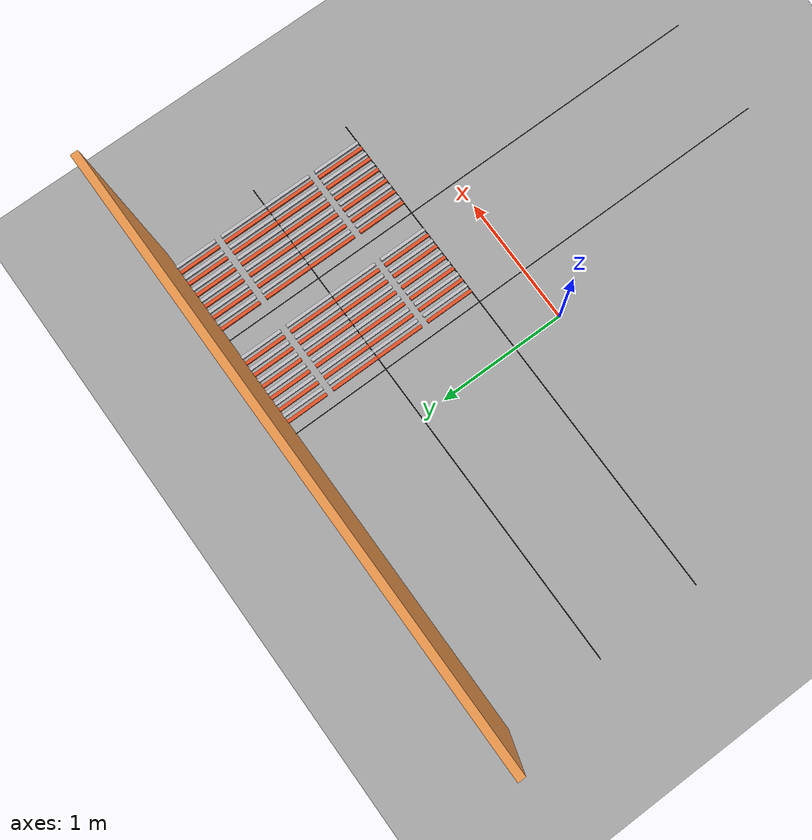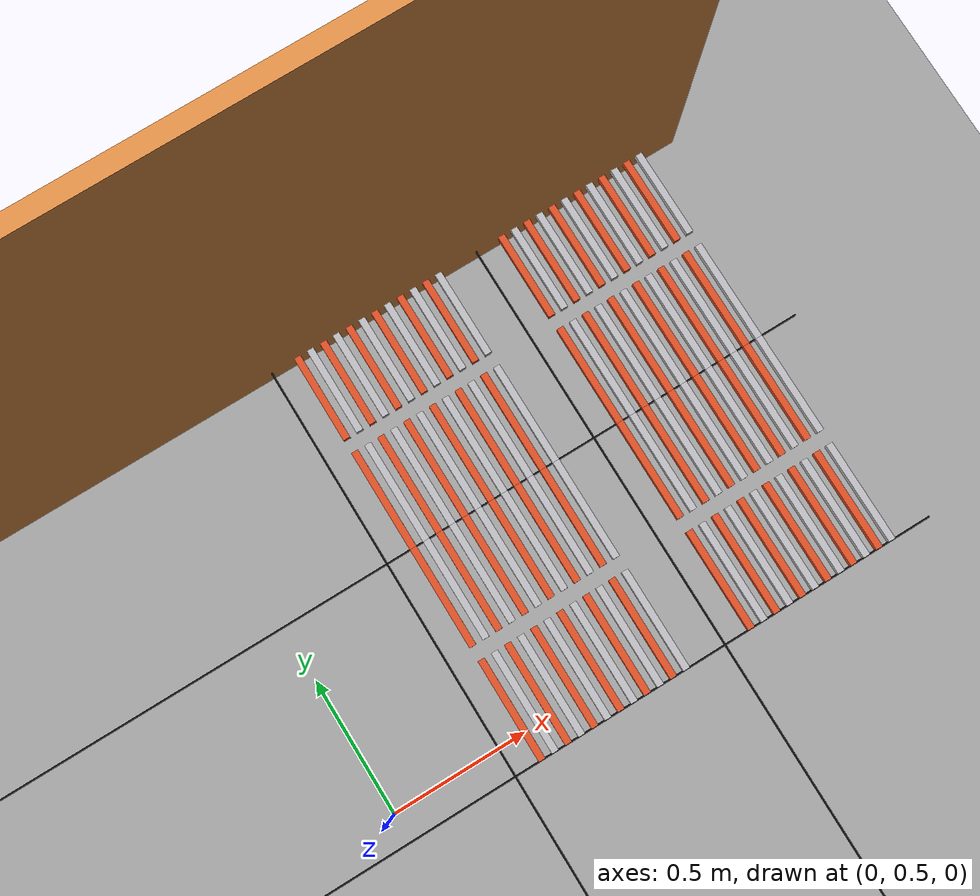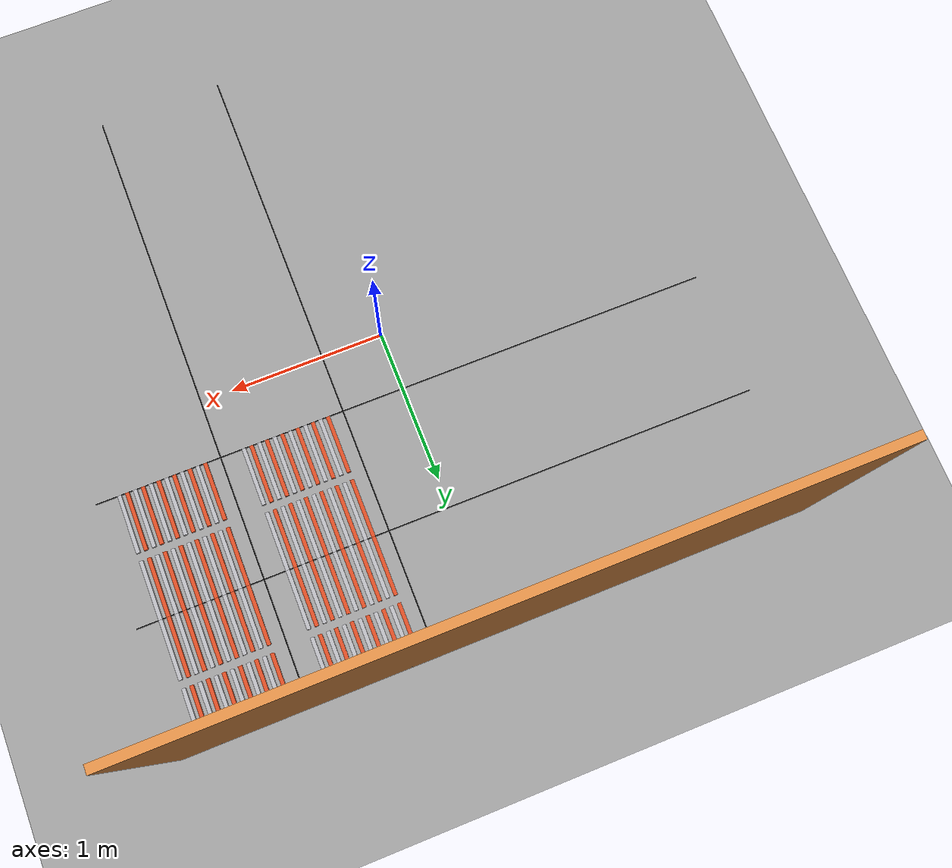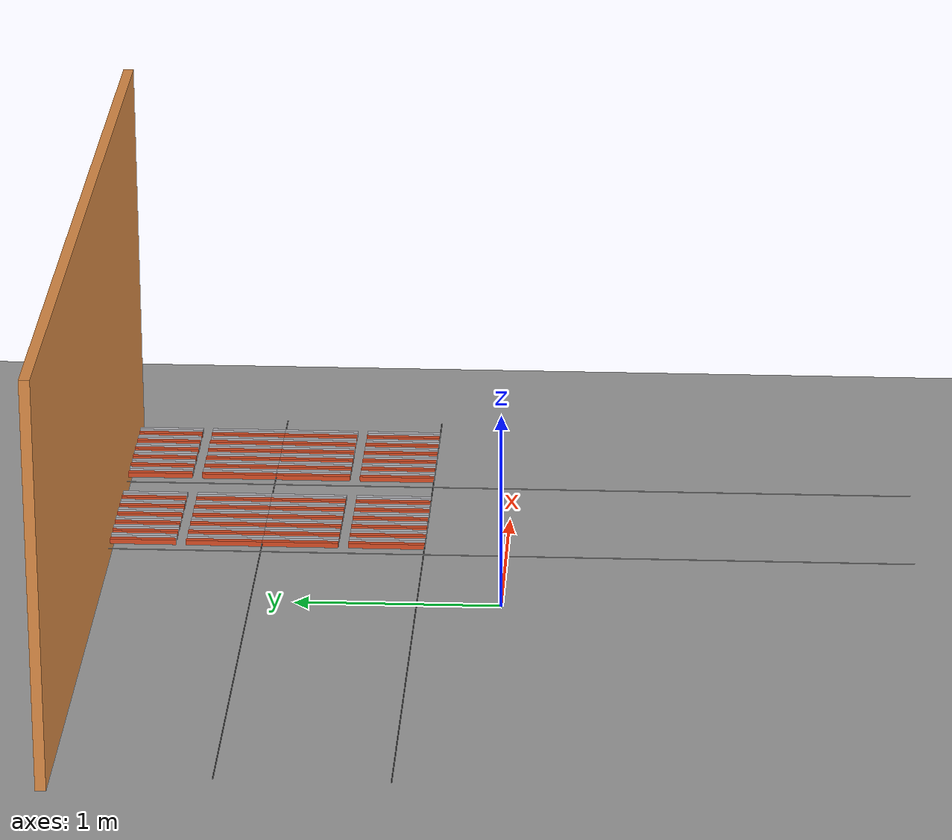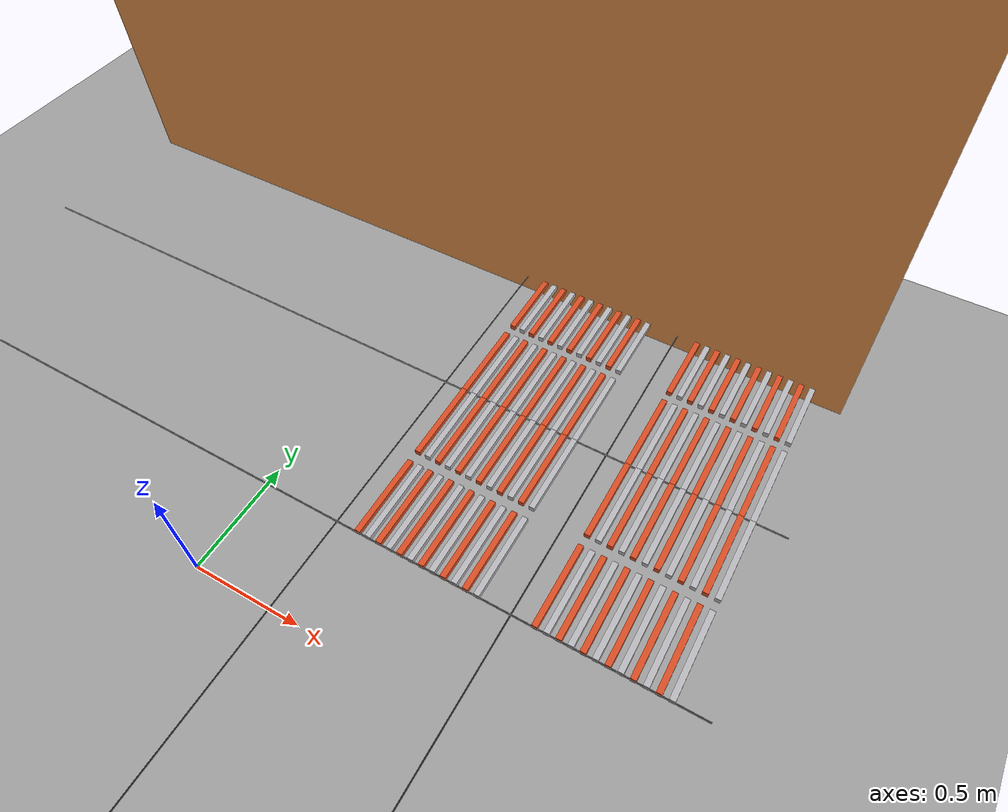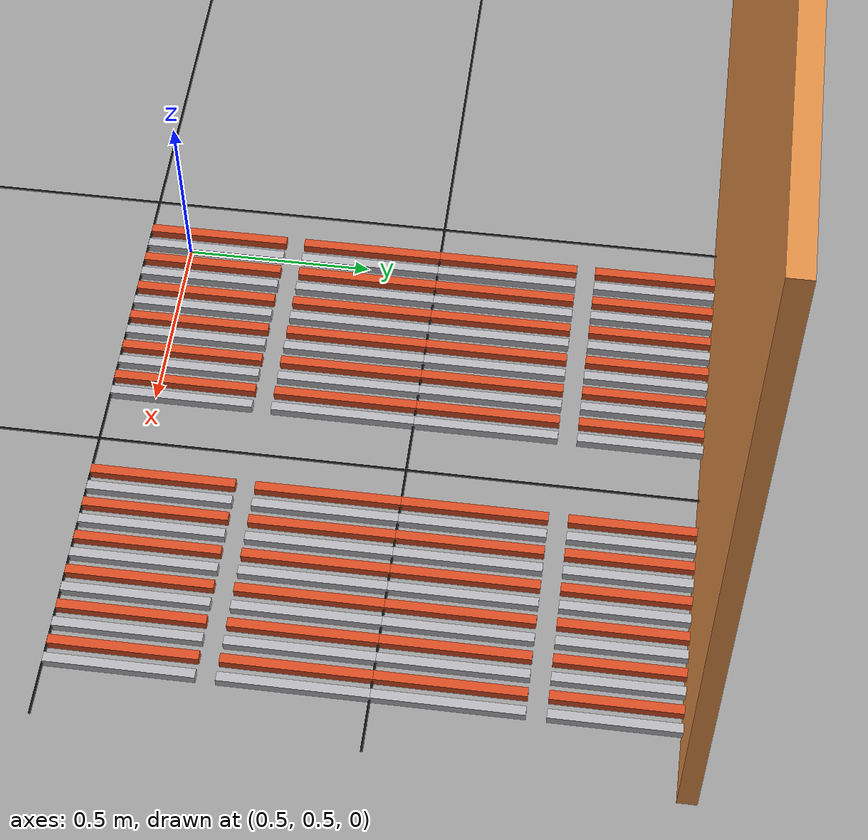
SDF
<sdf version="1.9">
 <world name="electrolysis_correct_layout">
  <model name="ground_plane">
   <static>true</static>
   <link name="link">
    <collision name="collision">
     <geometry><plane><normal>0 0 1</normal><size>20 20</size></plane></geometry>
    </collision>
    <visual name="visual">
     <geometry><plane><normal>0 0 1</normal><size>20 20</size></plane></geometry>
     <material><ambient>0.62 0.62 0.62 1</ambient><diffuse>0.62 0.62 0.62 1</diffuse></material>
    </visual>
   </link>
  </model>
  <model name="grid_vertical_3">
   <static>true</static>
   <pose>0.4000 0.0000 0.0810 0 0 0</pose>
   <link name="link">
    <collision name="collision"><geometry><box><size>0.0060 4.0000 0.0020</size></box></geometry></collision>
    <visual name="visual">
     <geometry><box><size>0.0060 4.0000 0.0020</size></box></geometry>
     <material><ambient>0.07 0.07 0.07 1</ambient><diffuse>0.07 0.07 0.07 1</diffuse></material>
    </visual>
   </link>
  </model>
  <model name="grid_horizontal_3">
   <static>true</static>
   <pose>0.0000 0.4000 0.0810 0 0 0</pose>
   <link name="link">
    <collision name="collision"><geometry><box><size>4.0000 0.0060 0.0020</size></box></geometry></collision>
    <visual name="visual">
     <geometry><box><size>4.0000 0.0060 0.0020</size></box></geometry>
     <material><ambient>0.07 0.07 0.07 1</ambient><diffuse>0.07 0.07 0.07 1</diffuse></material>
    </visual>
   </link>
  </model>
  <model name="grid_vertical_4">
   <static>true</static>
   <pose>1.2000 0.0000 0.0810 0 0 0</pose>
   <link name="link">
    <collision name="collision"><geometry><box><size>0.0060 4.0000 0.0020</size></box></geometry></collision>
    <visual name="visual">
     <geometry><box><size>0.0060 4.0000 0.0020</size></box></geometry>
     <material><ambient>0.07 0.07 0.07 1</ambient><diffuse>0.07 0.07 0.07 1</diffuse></material>
    </visual>
   </link>
  </model>
  <model name="grid_horizontal_4">
   <static>true</static>
   <pose>0.0000 1.2000 0.0810 0 0 0</pose>
   <link name="link">
    <collision name="collision"><geometry><box><size>4.0000 0.0060 0.0020</size></box></geometry></collision>
    <visual name="visual">
     <geometry><box><size>4.0000 0.0060 0.0020</size></box></geometry>
     <material><ambient>0.07 0.07 0.07 1</ambient><diffuse>0.07 0.07 0.07 1</diffuse></material>
    </visual>
   </link>
  </model>
  <model name="right_bath_01_anode_01">
   <static>true</static>
   <pose>0.5000 0.5875 0.0800 0 0 0</pose>
   <link name="link">
    <collision name="collision"><geometry><box><size>0.0250 0.3750 0.0250</size></box></geometry></collision>
    <visual name="visual">
     <geometry><box><size>0.0250 0.3750 0.0250</size></box></geometry>
     <material><ambient>0.85 0.30 0.14 1</ambient><diffuse>0.85 0.30 0.14 1</diffuse></material>
    </visual>
   </link>
  </model>
  <model name="right_bath_01_cathode_02">
   <static>true</static>
   <pose>0.5500 0.5875 0.0800 0 0 0</pose>
   <link name="link">
    <collision name="collision"><geometry><box><size>0.0250 0.3750 0.0250</size></box></geometry></collision>
    <visual name="visual">
     <geometry><box><size>0.0250 0.3750 0.0250</size></box></geometry>
     <material><ambient>0.72 0.72 0.74 1</ambient><diffuse>0.72 0.72 0.74 1</diffuse></material>
    </visual>
   </link>
  </model>
  <model name="right_bath_01_anode_03">
   <static>true</static>
   <pose>0.6000 0.5875 0.0800 0 0 0</pose>
   <link name="link">
    <collision name="collision"><geometry><box><size>0.0250 0.3750 0.0250</size></box></geometry></collision>
    <visual name="visual">
     <geometry><box><size>0.0250 0.3750 0.0250</size></box></geometry>
     <material><ambient>0.85 0.30 0.14 1</ambient><diffuse>0.85 0.30 0.14 1</diffuse></material>
    </visual>
   </link>
  </model>
  <model name="right_bath_01_cathode_04">
   <static>true</static>
   <pose>0.6500 0.5875 0.0800 0 0 0</pose>
   <link name="link">
    <collision name="collision"><geometry><box><size>0.0250 0.3750 0.0250</size></box></geometry></collision>
    <visual name="visual">
     <geometry><box><size>0.0250 0.3750 0.0250</size></box></geometry>
     <material><ambient>0.72 0.72 0.74 1</ambient><diffuse>0.72 0.72 0.74 1</diffuse></material>
    </visual>
   </link>
  </model>
  <model name="right_bath_01_anode_05">
   <static>true</static>
   <pose>0.7000 0.5875 0.0800 0 0 0</pose>
   <link name="link">
    <collision name="collision"><geometry><box><size>0.0250 0.3750 0.0250</size></box></geometry></collision>
    <visual name="visual">
     <geometry><box><size>0.0250 0.3750 0.0250</size></box></geometry>
     <material><ambient>0.85 0.30 0.14 1</ambient><diffuse>0.85 0.30 0.14 1</diffuse></material>
    </visual>
   </link>
  </model>
  <model name="right_bath_01_cathode_06">
   <static>true</static>
   <pose>0.7500 0.5875 0.0800 0 0 0</pose>
   <link name="link">
    <collision name="collision"><geometry><box><size>0.0250 0.3750 0.0250</size></box></geometry></collision>
    <visual name="visual">
     <geometry><box><size>0.0250 0.3750 0.0250</size></box></geometry>
     <material><ambient>0.72 0.72 0.74 1</ambient><diffuse>0.72 0.72 0.74 1</diffuse></material>
    </visual>
   </link>
  </model>
  <model name="right_bath_01_anode_07">
   <static>true</static>
   <pose>0.8000 0.5875 0.0800 0 0 0</pose>
   <link name="link">
    <collision name="collision"><geometry><box><size>0.0250 0.3750 0.0250</size></box></geometry></collision>
    <visual name="visual">
     <geometry><box><size>0.0250 0.3750 0.0250</size></box></geometry>
     <material><ambient>0.85 0.30 0.14 1</ambient><diffuse>0.85 0.30 0.14 1</diffuse></material>
    </visual>
   </link>
  </model>
  <model name="right_bath_01_cathode_08">
   <static>true</static>
   <pose>0.8500 0.5875 0.0800 0 0 0</pose>
   <link name="link">
    <collision name="collision"><geometry><box><size>0.0250 0.3750 0.0250</size></box></geometry></collision>
    <visual name="visual">
     <geometry><box><size>0.0250 0.3750 0.0250</size></box></geometry>
     <material><ambient>0.72 0.72 0.74 1</ambient><diffuse>0.72 0.72 0.74 1</diffuse></material>
    </visual>
   </link>
  </model>
  <model name="right_bath_01_anode_09">
   <static>true</static>
   <pose>0.9000 0.5875 0.0800 0 0 0</pose>
   <link name="link">
    <collision name="collision"><geometry><box><size>0.0250 0.3750 0.0250</size></box></geometry></collision>
    <visual name="visual">
     <geometry><box><size>0.0250 0.3750 0.0250</size></box></geometry>
     <material><ambient>0.85 0.30 0.14 1</ambient><diffuse>0.85 0.30 0.14 1</diffuse></material>
    </visual>
   </link>
  </model>
  <model name="right_bath_01_cathode_10">
   <static>true</static>
   <pose>0.9500 0.5875 0.0800 0 0 0</pose>
   <link name="link">
    <collision name="collision"><geometry><box><size>0.0250 0.3750 0.0250</size></box></geometry></collision>
    <visual name="visual">
     <geometry><box><size>0.0250 0.3750 0.0250</size></box></geometry>
     <material><ambient>0.72 0.72 0.74 1</ambient><diffuse>0.72 0.72 0.74 1</diffuse></material>
    </visual>
   </link>
  </model>
  <model name="right_bath_01_anode_11">
   <static>true</static>
   <pose>1.0000 0.5875 0.0800 0 0 0</pose>
   <link name="link">
    <collision name="collision"><geometry><box><size>0.0250 0.3750 0.0250</size></box></geometry></collision>
    <visual name="visual">
     <geometry><box><size>0.0250 0.3750 0.0250</size></box></geometry>
     <material><ambient>0.85 0.30 0.14 1</ambient><diffuse>0.85 0.30 0.14 1</diffuse></material>
    </visual>
   </link>
  </model>
  <model name="right_bath_01_cathode_12">
   <static>true</static>
   <pose>1.0500 0.5875 0.0800 0 0 0</pose>
   <link name="link">
    <collision name="collision"><geometry><box><size>0.0250 0.3750 0.0250</size></box></geometry></collision>
    <visual name="visual">
     <geometry><box><size>0.0250 0.3750 0.0250</size></box></geometry>
     <material><ambient>0.72 0.72 0.74 1</ambient><diffuse>0.72 0.72 0.74 1</diffuse></material>
    </visual>
   </link>
  </model>
  <model name="right_bath_02_anode_01">
   <static>true</static>
   <pose>0.5000 1.0125 0.0800 0 0 0</pose>
   <link name="link">
    <collision name="collision"><geometry><box><size>0.0250 0.3750 0.0250</size></box></geometry></collision>
    <visual name="visual">
     <geometry><box><size>0.0250 0.3750 0.0250</size></box></geometry>
     <material><ambient>0.85 0.30 0.14 1</ambient><diffuse>0.85 0.30 0.14 1</diffuse></material>
    </visual>
   </link>
  </model>
  <model name="right_bath_02_cathode_02">
   <static>true</static>
   <pose>0.5500 1.0125 0.0800 0 0 0</pose>
   <link name="link">
    <collision name="collision"><geometry><box><size>0.0250 0.3750 0.0250</size></box></geometry></collision>
    <visual name="visual">
     <geometry><box><size>0.0250 0.3750 0.0250</size></box></geometry>
     <material><ambient>0.72 0.72 0.74 1</ambient><diffuse>0.72 0.72 0.74 1</diffuse></material>
    </visual>
   </link>
  </model>
  <model name="right_bath_02_anode_03">
   <static>true</static>
   <pose>0.6000 1.0125 0.0800 0 0 0</pose>
   <link name="link">
    <collision name="collision"><geometry><box><size>0.0250 0.3750 0.0250</size></box></geometry></collision>
    <visual name="visual">
     <geometry><box><size>0.0250 0.3750 0.0250</size></box></geometry>
     <material><ambient>0.85 0.30 0.14 1</ambient><diffuse>0.85 0.30 0.14 1</diffuse></material>
    </visual>
   </link>
  </model>
  <model name="right_bath_02_cathode_04">
   <static>true</static>
   <pose>0.6500 1.0125 0.0800 0 0 0</pose>
   <link name="link">
    <collision name="collision"><geometry><box><size>0.0250 0.3750 0.0250</size></box></geometry></collision>
    <visual name="visual">
     <geometry><box><size>0.0250 0.3750 0.0250</size></box></geometry>
     <material><ambient>0.72 0.72 0.74 1</ambient><diffuse>0.72 0.72 0.74 1</diffuse></material>
    </visual>
   </link>
  </model>
  <model name="right_bath_02_anode_05">
   <static>true</static>
   <pose>0.7000 1.0125 0.0800 0 0 0</pose>
   <link name="link">
    <collision name="collision"><geometry><box><size>0.0250 0.3750 0.0250</size></box></geometry></collision>
    <visual name="visual">
     <geometry><box><size>0.0250 0.3750 0.0250</size></box></geometry>
     <material><ambient>0.85 0.30 0.14 1</ambient><diffuse>0.85 0.30 0.14 1</diffuse></material>
    </visual>
   </link>
  </model>
  <model name="right_bath_02_cathode_06">
   <static>true</static>
   <pose>0.7500 1.0125 0.0800 0 0 0</pose>
   <link name="link">
    <collision name="collision"><geometry><box><size>0.0250 0.3750 0.0250</size></box></geometry></collision>
    <visual name="visual">
     <geometry><box><size>0.0250 0.3750 0.0250</size></box></geometry>
     <material><ambient>0.72 0.72 0.74 1</ambient><diffuse>0.72 0.72 0.74 1</diffuse></material>
    </visual>
   </link>
  </model>
  <model name="right_bath_02_anode_07">
   <static>true</static>
   <pose>0.8000 1.0125 0.0800 0 0 0</pose>
   <link name="link">
    <collision name="collision"><geometry><box><size>0.0250 0.3750 0.0250</size></box></geometry></collision>
    <visual name="visual">
     <geometry><box><size>0.0250 0.3750 0.0250</size></box></geometry>
     <material><ambient>0.85 0.30 0.14 1</ambient><diffuse>0.85 0.30 0.14 1</diffuse></material>
    </visual>
   </link>
  </model>
  <model name="right_bath_02_cathode_08">
   <static>true</static>
   <pose>0.8500 1.0125 0.0800 0 0 0</pose>
   <link name="link">
    <collision name="collision"><geometry><box><size>0.0250 0.3750 0.0250</size></box></geometry></collision>
    <visual name="visual">
     <geometry><box><size>0.0250 0.3750 0.0250</size></box></geometry>
     <material><ambient>0.72 0.72 0.74 1</ambient><diffuse>0.72 0.72 0.74 1</diffuse></material>
    </visual>
   </link>
  </model>
  <model name="right_bath_02_anode_09">
   <static>true</static>
   <pose>0.9000 1.0125 0.0800 0 0 0</pose>
   <link name="link">
    <collision name="collision"><geometry><box><size>0.0250 0.3750 0.0250</size></box></geometry></collision>
    <visual name="visual">
     <geometry><box><size>0.0250 0.3750 0.0250</size></box></geometry>
     <material><ambient>0.85 0.30 0.14 1</ambient><diffuse>0.85 0.30 0.14 1</diffuse></material>
    </visual>
   </link>
  </model>
  <model name="right_bath_02_cathode_10">
   <static>true</static>
   <pose>0.9500 1.0125 0.0800 0 0 0</pose>
   <link name="link">
    <collision name="collision"><geometry><box><size>0.0250 0.3750 0.0250</size></box></geometry></collision>
    <visual name="visual">
     <geometry><box><size>0.0250 0.3750 0.0250</size></box></geometry>
     <material><ambient>0.72 0.72 0.74 1</ambient><diffuse>0.72 0.72 0.74 1</diffuse></material>
    </visual>
   </link>
  </model>
  <model name="right_bath_02_anode_11">
   <static>true</static>
   <pose>1.0000 1.0125 0.0800 0 0 0</pose>
   <link name="link">
    <collision name="collision"><geometry><box><size>0.0250 0.3750 0.0250</size></box></geometry></collision>
    <visual name="visual">
     <geometry><box><size>0.0250 0.3750 0.0250</size></box></geometry>
     <material><ambient>0.85 0.30 0.14 1</ambient><diffuse>0.85 0.30 0.14 1</diffuse></material>
    </visual>
   </link>
  </model>
  <model name="right_bath_02_cathode_12">
   <static>true</static>
   <pose>1.0500 1.0125 0.0800 0 0 0</pose>
   <link name="link">
    <collision name="collision"><geometry><box><size>0.0250 0.3750 0.0250</size></box></geometry></collision>
    <visual name="visual">
     <geometry><box><size>0.0250 0.3750 0.0250</size></box></geometry>
     <material><ambient>0.72 0.72 0.74 1</ambient><diffuse>0.72 0.72 0.74 1</diffuse></material>
    </visual>
   </link>
  </model>
  <model name="right_bath_03_anode_01">
   <static>true</static>
   <pose>1.3000 0.5875 0.0800 0 0 0</pose>
   <link name="link">
    <collision name="collision"><geometry><box><size>0.0250 0.3750 0.0250</size></box></geometry></collision>
    <visual name="visual">
     <geometry><box><size>0.0250 0.3750 0.0250</size></box></geometry>
     <material><ambient>0.85 0.30 0.14 1</ambient><diffuse>0.85 0.30 0.14 1</diffuse></material>
    </visual>
   </link>
  </model>
  <model name="right_bath_03_cathode_02">
   <static>true</static>
   <pose>1.3500 0.5875 0.0800 0 0 0</pose>
   <link name="link">
    <collision name="collision"><geometry><box><size>0.0250 0.3750 0.0250</size></box></geometry></collision>
    <visual name="visual">
     <geometry><box><size>0.0250 0.3750 0.0250</size></box></geometry>
     <material><ambient>0.72 0.72 0.74 1</ambient><diffuse>0.72 0.72 0.74 1</diffuse></material>
    </visual>
   </link>
  </model>
  <model name="right_bath_03_anode_03">
   <static>true</static>
   <pose>1.4000 0.5875 0.0800 0 0 0</pose>
   <link name="link">
    <collision name="collision"><geometry><box><size>0.0250 0.3750 0.0250</size></box></geometry></collision>
    <visual name="visual">
     <geometry><box><size>0.0250 0.3750 0.0250</size></box></geometry>
     <material><ambient>0.85 0.30 0.14 1</ambient><diffuse>0.85 0.30 0.14 1</diffuse></material>
    </visual>
   </link>
  </model>
  <model name="right_bath_03_cathode_04">
   <static>true</static>
   <pose>1.4500 0.5875 0.0800 0 0 0</pose>
   <link name="link">
    <collision name="collision"><geometry><box><size>0.0250 0.3750 0.0250</size></box></geometry></collision>
    <visual name="visual">
     <geometry><box><size>0.0250 0.3750 0.0250</size></box></geometry>
     <material><ambient>0.72 0.72 0.74 1</ambient><diffuse>0.72 0.72 0.74 1</diffuse></material>
    </visual>
   </link>
  </model>
  <model name="right_bath_03_anode_05">
   <static>true</static>
   <pose>1.5000 0.5875 0.0800 0 0 0</pose>
   <link name="link">
    <collision name="collision"><geometry><box><size>0.0250 0.3750 0.0250</size></box></geometry></collision>
    <visual name="visual">
     <geometry><box><size>0.0250 0.3750 0.0250</size></box></geometry>
     <material><ambient>0.85 0.30 0.14 1</ambient><diffuse>0.85 0.30 0.14 1</diffuse></material>
    </visual>
   </link>
  </model>
  <model name="right_bath_03_cathode_06">
   <static>true</static>
   <pose>1.5500 0.5875 0.0800 0 0 0</pose>
   <link name="link">
    <collision name="collision"><geometry><box><size>0.0250 0.3750 0.0250</size></box></geometry></collision>
    <visual name="visual">
     <geometry><box><size>0.0250 0.3750 0.0250</size></box></geometry>
     <material><ambient>0.72 0.72 0.74 1</ambient><diffuse>0.72 0.72 0.74 1</diffuse></material>
    </visual>
   </link>
  </model>
  <model name="right_bath_03_anode_07">
   <static>true</static>
   <pose>1.6000 0.5875 0.0800 0 0 0</pose>
   <link name="link">
    <collision name="collision"><geometry><box><size>0.0250 0.3750 0.0250</size></box></geometry></collision>
    <visual name="visual">
     <geometry><box><size>0.0250 0.3750 0.0250</size></box></geometry>
     <material><ambient>0.85 0.30 0.14 1</ambient><diffuse>0.85 0.30 0.14 1</diffuse></material>
    </visual>
   </link>
  </model>
  <model name="right_bath_03_cathode_08">
   <static>true</static>
   <pose>1.6500 0.5875 0.0800 0 0 0</pose>
   <link name="link">
    <collision name="collision"><geometry><box><size>0.0250 0.3750 0.0250</size></box></geometry></collision>
    <visual name="visual">
     <geometry><box><size>0.0250 0.3750 0.0250</size></box></geometry>
     <material><ambient>0.72 0.72 0.74 1</ambient><diffuse>0.72 0.72 0.74 1</diffuse></material>
    </visual>
   </link>
  </model>
  <model name="right_bath_03_anode_09">
   <static>true</static>
   <pose>1.7000 0.5875 0.0800 0 0 0</pose>
   <link name="link">
    <collision name="collision"><geometry><box><size>0.0250 0.3750 0.0250</size></box></geometry></collision>
    <visual name="visual">
     <geometry><box><size>0.0250 0.3750 0.0250</size></box></geometry>
     <material><ambient>0.85 0.30 0.14 1</ambient><diffuse>0.85 0.30 0.14 1</diffuse></material>
    </visual>
   </link>
  </model>
  <model name="right_bath_03_cathode_10">
   <static>true</static>
   <pose>1.7500 0.5875 0.0800 0 0 0</pose>
   <link name="link">
    <collision name="collision"><geometry><box><size>0.0250 0.3750 0.0250</size></box></geometry></collision>
    <visual name="visual">
     <geometry><box><size>0.0250 0.3750 0.0250</size></box></geometry>
     <material><ambient>0.72 0.72 0.74 1</ambient><diffuse>0.72 0.72 0.74 1</diffuse></material>
    </visual>
   </link>
  </model>
  <model name="right_bath_03_anode_11">
   <static>true</static>
   <pose>1.8000 0.5875 0.0800 0 0 0</pose>
   <link name="link">
    <collision name="collision"><geometry><box><size>0.0250 0.3750 0.0250</size></box></geometry></collision>
    <visual name="visual">
     <geometry><box><size>0.0250 0.3750 0.0250</size></box></geometry>
     <material><ambient>0.85 0.30 0.14 1</ambient><diffuse>0.85 0.30 0.14 1</diffuse></material>
    </visual>
   </link>
  </model>
  <model name="right_bath_03_cathode_12">
   <static>true</static>
   <pose>1.8500 0.5875 0.0800 0 0 0</pose>
   <link name="link">
    <collision name="collision"><geometry><box><size>0.0250 0.3750 0.0250</size></box></geometry></collision>
    <visual name="visual">
     <geometry><box><size>0.0250 0.3750 0.0250</size></box></geometry>
     <material><ambient>0.72 0.72 0.74 1</ambient><diffuse>0.72 0.72 0.74 1</diffuse></material>
    </visual>
   </link>
  </model>
  <model name="right_bath_04_anode_01">
   <static>true</static>
   <pose>1.3000 1.0125 0.0800 0 0 0</pose>
   <link name="link">
    <collision name="collision"><geometry><box><size>0.0250 0.3750 0.0250</size></box></geometry></collision>
    <visual name="visual">
     <geometry><box><size>0.0250 0.3750 0.0250</size></box></geometry>
     <material><ambient>0.85 0.30 0.14 1</ambient><diffuse>0.85 0.30 0.14 1</diffuse></material>
    </visual>
   </link>
  </model>
  <model name="right_bath_04_cathode_02">
   <static>true</static>
   <pose>1.3500 1.0125 0.0800 0 0 0</pose>
   <link name="link">
    <collision name="collision"><geometry><box><size>0.0250 0.3750 0.0250</size></box></geometry></collision>
    <visual name="visual">
     <geometry><box><size>0.0250 0.3750 0.0250</size></box></geometry>
     <material><ambient>0.72 0.72 0.74 1</ambient><diffuse>0.72 0.72 0.74 1</diffuse></material>
    </visual>
   </link>
  </model>
  <model name="right_bath_04_anode_03">
   <static>true</static>
   <pose>1.4000 1.0125 0.0800 0 0 0</pose>
   <link name="link">
    <collision name="collision"><geometry><box><size>0.0250 0.3750 0.0250</size></box></geometry></collision>
    <visual name="visual">
     <geometry><box><size>0.0250 0.3750 0.0250</size></box></geometry>
     <material><ambient>0.85 0.30 0.14 1</ambient><diffuse>0.85 0.30 0.14 1</diffuse></material>
    </visual>
   </link>
  </model>
  <model name="right_bath_04_cathode_04">
   <static>true</static>
   <pose>1.4500 1.0125 0.0800 0 0 0</pose>
   <link name="link">
    <collision name="collision"><geometry><box><size>0.0250 0.3750 0.0250</size></box></geometry></collision>
    <visual name="visual">
     <geometry><box><size>0.0250 0.3750 0.0250</size></box></geometry>
     <material><ambient>0.72 0.72 0.74 1</ambient><diffuse>0.72 0.72 0.74 1</diffuse></material>
    </visual>
   </link>
  </model>
  <model name="right_bath_04_anode_05">
   <static>true</static>
   <pose>1.5000 1.0125 0.0800 0 0 0</pose>
   <link name="link">
    <collision name="collision"><geometry><box><size>0.0250 0.3750 0.0250</size></box></geometry></collision>
    <visual name="visual">
     <geometry><box><size>0.0250 0.3750 0.0250</size></box></geometry>
     <material><ambient>0.85 0.30 0.14 1</ambient><diffuse>0.85 0.30 0.14 1</diffuse></material>
    </visual>
   </link>
  </model>
  <model name="right_bath_04_cathode_06">
   <static>true</static>
   <pose>1.5500 1.0125 0.0800 0 0 0</pose>
   <link name="link">
    <collision name="collision"><geometry><box><size>0.0250 0.3750 0.0250</size></box></geometry></collision>
    <visual name="visual">
     <geometry><box><size>0.0250 0.3750 0.0250</size></box></geometry>
     <material><ambient>0.72 0.72 0.74 1</ambient><diffuse>0.72 0.72 0.74 1</diffuse></material>
    </visual>
   </link>
  </model>
  <model name="right_bath_04_anode_07">
   <static>true</static>
   <pose>1.6000 1.0125 0.0800 0 0 0</pose>
   <link name="link">
    <collision name="collision"><geometry><box><size>0.0250 0.3750 0.0250</size></box></geometry></collision>
    <visual name="visual">
     <geometry><box><size>0.0250 0.3750 0.0250</size></box></geometry>
     <material><ambient>0.85 0.30 0.14 1</ambient><diffuse>0.85 0.30 0.14 1</diffuse></material>
    </visual>
   </link>
  </model>
  <model name="right_bath_04_cathode_08">
   <static>true</static>
   <pose>1.6500 1.0125 0.0800 0 0 0</pose>
   <link name="link">
    <collision name="collision"><geometry><box><size>0.0250 0.3750 0.0250</size></box></geometry></collision>
    <visual name="visual">
     <geometry><box><size>0.0250 0.3750 0.0250</size></box></geometry>
     <material><ambient>0.72 0.72 0.74 1</ambient><diffuse>0.72 0.72 0.74 1</diffuse></material>
    </visual>
   </link>
  </model>
  <model name="right_bath_04_anode_09">
   <static>true</static>
   <pose>1.7000 1.0125 0.0800 0 0 0</pose>
   <link name="link">
    <collision name="collision"><geometry><box><size>0.0250 0.3750 0.0250</size></box></geometry></collision>
    <visual name="visual">
     <geometry><box><size>0.0250 0.3750 0.0250</size></box></geometry>
     <material><ambient>0.85 0.30 0.14 1</ambient><diffuse>0.85 0.30 0.14 1</diffuse></material>
    </visual>
   </link>
  </model>
  <model name="right_bath_04_cathode_10">
   <static>true</static>
   <pose>1.7500 1.0125 0.0800 0 0 0</pose>
   <link name="link">
    <collision name="collision"><geometry><box><size>0.0250 0.3750 0.0250</size></box></geometry></collision>
    <visual name="visual">
     <geometry><box><size>0.0250 0.3750 0.0250</size></box></geometry>
     <material><ambient>0.72 0.72 0.74 1</ambient><diffuse>0.72 0.72 0.74 1</diffuse></material>
    </visual>
   </link>
  </model>
  <model name="right_bath_04_anode_11">
   <static>true</static>
   <pose>1.8000 1.0125 0.0800 0 0 0</pose>
   <link name="link">
    <collision name="collision"><geometry><box><size>0.0250 0.3750 0.0250</size></box></geometry></collision>
    <visual name="visual">
     <geometry><box><size>0.0250 0.3750 0.0250</size></box></geometry>
     <material><ambient>0.85 0.30 0.14 1</ambient><diffuse>0.85 0.30 0.14 1</diffuse></material>
    </visual>
   </link>
  </model>
  <model name="right_bath_04_cathode_12">
   <static>true</static>
   <pose>1.8500 1.0125 0.0800 0 0 0</pose>
   <link name="link">
    <collision name="collision"><geometry><box><size>0.0250 0.3750 0.0250</size></box></geometry></collision>
    <visual name="visual">
     <geometry><box><size>0.0250 0.3750 0.0250</size></box></geometry>
     <material><ambient>0.72 0.72 0.74 1</ambient><diffuse>0.72 0.72 0.74 1</diffuse></material>
    </visual>
   </link>
  </model>
  <model name="right_bath_05_anode_01">
   <static>true</static>
   <pose>0.5000 1.3875 0.0800 0 0 0</pose>
   <link name="link">
    <collision name="collision"><geometry><box><size>0.0250 0.3750 0.0250</size></box></geometry></collision>
    <visual name="visual">
     <geometry><box><size>0.0250 0.3750 0.0250</size></box></geometry>
     <material><ambient>0.85 0.30 0.14 1</ambient><diffuse>0.85 0.30 0.14 1</diffuse></material>
    </visual>
   </link>
  </model>
  <model name="right_bath_05_cathode_02">
   <static>true</static>
   <pose>0.5500 1.3875 0.0800 0 0 0</pose>
   <link name="link">
    <collision name="collision"><geometry><box><size>0.0250 0.3750 0.0250</size></box></geometry></collision>
    <visual name="visual">
     <geometry><box><size>0.0250 0.3750 0.0250</size></box></geometry>
     <material><ambient>0.72 0.72 0.74 1</ambient><diffuse>0.72 0.72 0.74 1</diffuse></material>
    </visual>
   </link>
  </model>
  <model name="right_bath_05_anode_03">
   <static>true</static>
   <pose>0.6000 1.3875 0.0800 0 0 0</pose>
   <link name="link">
    <collision name="collision"><geometry><box><size>0.0250 0.3750 0.0250</size></box></geometry></collision>
    <visual name="visual">
     <geometry><box><size>0.0250 0.3750 0.0250</size></box></geometry>
     <material><ambient>0.85 0.30 0.14 1</ambient><diffuse>0.85 0.30 0.14 1</diffuse></material>
    </visual>
   </link>
  </model>
  <model name="right_bath_05_cathode_04">
   <static>true</static>
   <pose>0.6500 1.3875 0.0800 0 0 0</pose>
   <link name="link">
    <collision name="collision"><geometry><box><size>0.0250 0.3750 0.0250</size></box></geometry></collision>
    <visual name="visual">
     <geometry><box><size>0.0250 0.3750 0.0250</size></box></geometry>
     <material><ambient>0.72 0.72 0.74 1</ambient><diffuse>0.72 0.72 0.74 1</diffuse></material>
    </visual>
   </link>
  </model>
  <model name="right_bath_05_anode_05">
   <static>true</static>
   <pose>0.7000 1.3875 0.0800 0 0 0</pose>
   <link name="link">
    <collision name="collision"><geometry><box><size>0.0250 0.3750 0.0250</size></box></geometry></collision>
    <visual name="visual">
     <geometry><box><size>0.0250 0.3750 0.0250</size></box></geometry>
     <material><ambient>0.85 0.30 0.14 1</ambient><diffuse>0.85 0.30 0.14 1</diffuse></material>
    </visual>
   </link>
  </model>
  <model name="right_bath_05_cathode_06">
   <static>true</static>
   <pose>0.7500 1.3875 0.0800 0 0 0</pose>
   <link name="link">
    <collision name="collision"><geometry><box><size>0.0250 0.3750 0.0250</size></box></geometry></collision>
    <visual name="visual">
     <geometry><box><size>0.0250 0.3750 0.0250</size></box></geometry>
     <material><ambient>0.72 0.72 0.74 1</ambient><diffuse>0.72 0.72 0.74 1</diffuse></material>
    </visual>
   </link>
  </model>
  <model name="right_bath_05_anode_07">
   <static>true</static>
   <pose>0.8000 1.3875 0.0800 0 0 0</pose>
   <link name="link">
    <collision name="collision"><geometry><box><size>0.0250 0.3750 0.0250</size></box></geometry></collision>
    <visual name="visual">
     <geometry><box><size>0.0250 0.3750 0.0250</size></box></geometry>
     <material><ambient>0.85 0.30 0.14 1</ambient><diffuse>0.85 0.30 0.14 1</diffuse></material>
    </visual>
   </link>
  </model>
  <model name="right_bath_05_cathode_08">
   <static>true</static>
   <pose>0.8500 1.3875 0.0800 0 0 0</pose>
   <link name="link">
    <collision name="collision"><geometry><box><size>0.0250 0.3750 0.0250</size></box></geometry></collision>
    <visual name="visual">
     <geometry><box><size>0.0250 0.3750 0.0250</size></box></geometry>
     <material><ambient>0.72 0.72 0.74 1</ambient><diffuse>0.72 0.72 0.74 1</diffuse></material>
    </visual>
   </link>
  </model>
  <model name="right_bath_05_anode_09">
   <static>true</static>
   <pose>0.9000 1.3875 0.0800 0 0 0</pose>
   <link name="link">
    <collision name="collision"><geometry><box><size>0.0250 0.3750 0.0250</size></box></geometry></collision>
    <visual name="visual">
     <geometry><box><size>0.0250 0.3750 0.0250</size></box></geometry>
     <material><ambient>0.85 0.30 0.14 1</ambient><diffuse>0.85 0.30 0.14 1</diffuse></material>
    </visual>
   </link>
  </model>
  <model name="right_bath_05_cathode_10">
   <static>true</static>
   <pose>0.9500 1.3875 0.0800 0 0 0</pose>
   <link name="link">
    <collision name="collision"><geometry><box><size>0.0250 0.3750 0.0250</size></box></geometry></collision>
    <visual name="visual">
     <geometry><box><size>0.0250 0.3750 0.0250</size></box></geometry>
     <material><ambient>0.72 0.72 0.74 1</ambient><diffuse>0.72 0.72 0.74 1</diffuse></material>
    </visual>
   </link>
  </model>
  <model name="right_bath_05_anode_11">
   <static>true</static>
   <pose>1.0000 1.3875 0.0800 0 0 0</pose>
   <link name="link">
    <collision name="collision"><geometry><box><size>0.0250 0.3750 0.0250</size></box></geometry></collision>
    <visual name="visual">
     <geometry><box><size>0.0250 0.3750 0.0250</size></box></geometry>
     <material><ambient>0.85 0.30 0.14 1</ambient><diffuse>0.85 0.30 0.14 1</diffuse></material>
    </visual>
   </link>
  </model>
  <model name="right_bath_05_cathode_12">
   <static>true</static>
   <pose>1.0500 1.3875 0.0800 0 0 0</pose>
   <link name="link">
    <collision name="collision"><geometry><box><size>0.0250 0.3750 0.0250</size></box></geometry></collision>
    <visual name="visual">
     <geometry><box><size>0.0250 0.3750 0.0250</size></box></geometry>
     <material><ambient>0.72 0.72 0.74 1</ambient><diffuse>0.72 0.72 0.74 1</diffuse></material>
    </visual>
   </link>
  </model>
  <model name="right_bath_06_anode_01">
   <static>true</static>
   <pose>0.5000 1.8125 0.0800 0 0 0</pose>
   <link name="link">
    <collision name="collision"><geometry><box><size>0.0250 0.3750 0.0250</size></box></geometry></collision>
    <visual name="visual">
     <geometry><box><size>0.0250 0.3750 0.0250</size></box></geometry>
     <material><ambient>0.85 0.30 0.14 1</ambient><diffuse>0.85 0.30 0.14 1</diffuse></material>
    </visual>
   </link>
  </model>
  <model name="right_bath_06_cathode_02">
   <static>true</static>
   <pose>0.5500 1.8125 0.0800 0 0 0</pose>
   <link name="link">
    <collision name="collision"><geometry><box><size>0.0250 0.3750 0.0250</size></box></geometry></collision>
    <visual name="visual">
     <geometry><box><size>0.0250 0.3750 0.0250</size></box></geometry>
     <material><ambient>0.72 0.72 0.74 1</ambient><diffuse>0.72 0.72 0.74 1</diffuse></material>
    </visual>
   </link>
  </model>
  <model name="right_bath_06_anode_03">
   <static>true</static>
   <pose>0.6000 1.8125 0.0800 0 0 0</pose>
   <link name="link">
    <collision name="collision"><geometry><box><size>0.0250 0.3750 0.0250</size></box></geometry></collision>
    <visual name="visual">
     <geometry><box><size>0.0250 0.3750 0.0250</size></box></geometry>
     <material><ambient>0.85 0.30 0.14 1</ambient><diffuse>0.85 0.30 0.14 1</diffuse></material>
    </visual>
   </link>
  </model>
  <model name="right_bath_06_cathode_04">
   <static>true</static>
   <pose>0.6500 1.8125 0.0800 0 0 0</pose>
   <link name="link">
    <collision name="collision"><geometry><box><size>0.0250 0.3750 0.0250</size></box></geometry></collision>
    <visual name="visual">
     <geometry><box><size>0.0250 0.3750 0.0250</size></box></geometry>
     <material><ambient>0.72 0.72 0.74 1</ambient><diffuse>0.72 0.72 0.74 1</diffuse></material>
    </visual>
   </link>
  </model>
  <model name="right_bath_06_anode_05">
   <static>true</static>
   <pose>0.7000 1.8125 0.0800 0 0 0</pose>
   <link name="link">
    <collision name="collision"><geometry><box><size>0.0250 0.3750 0.0250</size></box></geometry></collision>
    <visual name="visual">
     <geometry><box><size>0.0250 0.3750 0.0250</size></box></geometry>
     <material><ambient>0.85 0.30 0.14 1</ambient><diffuse>0.85 0.30 0.14 1</diffuse></material>
    </visual>
   </link>
  </model>
  <model name="right_bath_06_cathode_06">
   <static>true</static>
   <pose>0.7500 1.8125 0.0800 0 0 0</pose>
   <link name="link">
    <collision name="collision"><geometry><box><size>0.0250 0.3750 0.0250</size></box></geometry></collision>
    <visual name="visual">
     <geometry><box><size>0.0250 0.3750 0.0250</size></box></geometry>
     <material><ambient>0.72 0.72 0.74 1</ambient><diffuse>0.72 0.72 0.74 1</diffuse></material>
    </visual>
   </link>
  </model>
  <model name="right_bath_06_anode_07">
   <static>true</static>
   <pose>0.8000 1.8125 0.0800 0 0 0</pose>
   <link name="link">
    <collision name="collision"><geometry><box><size>0.0250 0.3750 0.0250</size></box></geometry></collision>
    <visual name="visual">
     <geometry><box><size>0.0250 0.3750 0.0250</size></box></geometry>
     <material><ambient>0.85 0.30 0.14 1</ambient><diffuse>0.85 0.30 0.14 1</diffuse></material>
    </visual>
   </link>
  </model>
  <model name="right_bath_06_cathode_08">
   <static>true</static>
   <pose>0.8500 1.8125 0.0800 0 0 0</pose>
   <link name="link">
    <collision name="collision"><geometry><box><size>0.0250 0.3750 0.0250</size></box></geometry></collision>
    <visual name="visual">
     <geometry><box><size>0.0250 0.3750 0.0250</size></box></geometry>
     <material><ambient>0.72 0.72 0.74 1</ambient><diffuse>0.72 0.72 0.74 1</diffuse></material>
    </visual>
   </link>
  </model>
  <model name="right_bath_06_anode_09">
   <static>true</static>
   <pose>0.9000 1.8125 0.0800 0 0 0</pose>
   <link name="link">
    <collision name="collision"><geometry><box><size>0.0250 0.3750 0.0250</size></box></geometry></collision>
    <visual name="visual">
     <geometry><box><size>0.0250 0.3750 0.0250</size></box></geometry>
     <material><ambient>0.85 0.30 0.14 1</ambient><diffuse>0.85 0.30 0.14 1</diffuse></material>
    </visual>
   </link>
  </model>
  <model name="right_bath_06_cathode_10">
   <static>true</static>
   <pose>0.9500 1.8125 0.0800 0 0 0</pose>
   <link name="link">
    <collision name="collision"><geometry><box><size>0.0250 0.3750 0.0250</size></box></geometry></collision>
    <visual name="visual">
     <geometry><box><size>0.0250 0.3750 0.0250</size></box></geometry>
     <material><ambient>0.72 0.72 0.74 1</ambient><diffuse>0.72 0.72 0.74 1</diffuse></material>
    </visual>
   </link>
  </model>
  <model name="right_bath_06_anode_11">
   <static>true</static>
   <pose>1.0000 1.8125 0.0800 0 0 0</pose>
   <link name="link">
    <collision name="collision"><geometry><box><size>0.0250 0.3750 0.0250</size></box></geometry></collision>
    <visual name="visual">
     <geometry><box><size>0.0250 0.3750 0.0250</size></box></geometry>
     <material><ambient>0.85 0.30 0.14 1</ambient><diffuse>0.85 0.30 0.14 1</diffuse></material>
    </visual>
   </link>
  </model>
  <model name="right_bath_06_cathode_12">
   <static>true</static>
   <pose>1.0500 1.8125 0.0800 0 0 0</pose>
   <link name="link">
    <collision name="collision"><geometry><box><size>0.0250 0.3750 0.0250</size></box></geometry></collision>
    <visual name="visual">
     <geometry><box><size>0.0250 0.3750 0.0250</size></box></geometry>
     <material><ambient>0.72 0.72 0.74 1</ambient><diffuse>0.72 0.72 0.74 1</diffuse></material>
    </visual>
   </link>
  </model>
  <model name="right_bath_07_anode_01">
   <static>true</static>
   <pose>1.3000 1.3875 0.0800 0 0 0</pose>
   <link name="link">
    <collision name="collision"><geometry><box><size>0.0250 0.3750 0.0250</size></box></geometry></collision>
    <visual name="visual">
     <geometry><box><size>0.0250 0.3750 0.0250</size></box></geometry>
     <material><ambient>0.85 0.30 0.14 1</ambient><diffuse>0.85 0.30 0.14 1</diffuse></material>
    </visual>
   </link>
  </model>
  <model name="right_bath_07_cathode_02">
   <static>true</static>
   <pose>1.3500 1.3875 0.0800 0 0 0</pose>
   <link name="link">
    <collision name="collision"><geometry><box><size>0.0250 0.3750 0.0250</size></box></geometry></collision>
    <visual name="visual">
     <geometry><box><size>0.0250 0.3750 0.0250</size></box></geometry>
     <material><ambient>0.72 0.72 0.74 1</ambient><diffuse>0.72 0.72 0.74 1</diffuse></material>
    </visual>
   </link>
  </model>
  <model name="right_bath_07_anode_03">
   <static>true</static>
   <pose>1.4000 1.3875 0.0800 0 0 0</pose>
   <link name="link">
    <collision name="collision"><geometry><box><size>0.0250 0.3750 0.0250</size></box></geometry></collision>
    <visual name="visual">
     <geometry><box><size>0.0250 0.3750 0.0250</size></box></geometry>
     <material><ambient>0.85 0.30 0.14 1</ambient><diffuse>0.85 0.30 0.14 1</diffuse></material>
    </visual>
   </link>
  </model>
  <model name="right_bath_07_cathode_04">
   <static>true</static>
   <pose>1.4500 1.3875 0.0800 0 0 0</pose>
   <link name="link">
    <collision name="collision"><geometry><box><size>0.0250 0.3750 0.0250</size></box></geometry></collision>
    <visual name="visual">
     <geometry><box><size>0.0250 0.3750 0.0250</size></box></geometry>
     <material><ambient>0.72 0.72 0.74 1</ambient><diffuse>0.72 0.72 0.74 1</diffuse></material>
    </visual>
   </link>
  </model>
  <model name="right_bath_07_anode_05">
   <static>true</static>
   <pose>1.5000 1.3875 0.0800 0 0 0</pose>
   <link name="link">
    <collision name="collision"><geometry><box><size>0.0250 0.3750 0.0250</size></box></geometry></collision>
    <visual name="visual">
     <geometry><box><size>0.0250 0.3750 0.0250</size></box></geometry>
     <material><ambient>0.85 0.30 0.14 1</ambient><diffuse>0.85 0.30 0.14 1</diffuse></material>
    </visual>
   </link>
  </model>
  <model name="right_bath_07_cathode_06">
   <static>true</static>
   <pose>1.5500 1.3875 0.0800 0 0 0</pose>
   <link name="link">
    <collision name="collision"><geometry><box><size>0.0250 0.3750 0.0250</size></box></geometry></collision>
    <visual name="visual">
     <geometry><box><size>0.0250 0.3750 0.0250</size></box></geometry>
     <material><ambient>0.72 0.72 0.74 1</ambient><diffuse>0.72 0.72 0.74 1</diffuse></material>
    </visual>
   </link>
  </model>
  <model name="right_bath_07_anode_07">
   <static>true</static>
   <pose>1.6000 1.3875 0.0800 0 0 0</pose>
   <link name="link">
    <collision name="collision"><geometry><box><size>0.0250 0.3750 0.0250</size></box></geometry></collision>
    <visual name="visual">
     <geometry><box><size>0.0250 0.3750 0.0250</size></box></geometry>
     <material><ambient>0.85 0.30 0.14 1</ambient><diffuse>0.85 0.30 0.14 1</diffuse></material>
    </visual>
   </link>
  </model>
  <model name="right_bath_07_cathode_08">
   <static>true</static>
   <pose>1.6500 1.3875 0.0800 0 0 0</pose>
   <link name="link">
    <collision name="collision"><geometry><box><size>0.0250 0.3750 0.0250</size></box></geometry></collision>
    <visual name="visual">
     <geometry><box><size>0.0250 0.3750 0.0250</size></box></geometry>
     <material><ambient>0.72 0.72 0.74 1</ambient><diffuse>0.72 0.72 0.74 1</diffuse></material>
    </visual>
   </link>
  </model>
  <model name="right_bath_07_anode_09">
   <static>true</static>
   <pose>1.7000 1.3875 0.0800 0 0 0</pose>
   <link name="link">
    <collision name="collision"><geometry><box><size>0.0250 0.3750 0.0250</size></box></geometry></collision>
    <visual name="visual">
     <geometry><box><size>0.0250 0.3750 0.0250</size></box></geometry>
     <material><ambient>0.85 0.30 0.14 1</ambient><diffuse>0.85 0.30 0.14 1</diffuse></material>
    </visual>
   </link>
  </model>
  <model name="right_bath_07_cathode_10">
   <static>true</static>
   <pose>1.7500 1.3875 0.0800 0 0 0</pose>
   <link name="link">
    <collision name="collision"><geometry><box><size>0.0250 0.3750 0.0250</size></box></geometry></collision>
    <visual name="visual">
     <geometry><box><size>0.0250 0.3750 0.0250</size></box></geometry>
     <material><ambient>0.72 0.72 0.74 1</ambient><diffuse>0.72 0.72 0.74 1</diffuse></material>
    </visual>
   </link>
  </model>
  <model name="right_bath_07_anode_11">
   <static>true</static>
   <pose>1.8000 1.3875 0.0800 0 0 0</pose>
   <link name="link">
    <collision name="collision"><geometry><box><size>0.0250 0.3750 0.0250</size></box></geometry></collision>
    <visual name="visual">
     <geometry><box><size>0.0250 0.3750 0.0250</size></box></geometry>
     <material><ambient>0.85 0.30 0.14 1</ambient><diffuse>0.85 0.30 0.14 1</diffuse></material>
    </visual>
   </link>
  </model>
  <model name="right_bath_07_cathode_12">
   <static>true</static>
   <pose>1.8500 1.3875 0.0800 0 0 0</pose>
   <link name="link">
    <collision name="collision"><geometry><box><size>0.0250 0.3750 0.0250</size></box></geometry></collision>
    <visual name="visual">
     <geometry><box><size>0.0250 0.3750 0.0250</size></box></geometry>
     <material><ambient>0.72 0.72 0.74 1</ambient><diffuse>0.72 0.72 0.74 1</diffuse></material>
    </visual>
   </link>
  </model>
  <model name="right_bath_08_anode_01">
   <static>true</static>
   <pose>1.3000 1.8125 0.0800 0 0 0</pose>
   <link name="link">
    <collision name="collision"><geometry><box><size>0.0250 0.3750 0.0250</size></box></geometry></collision>
    <visual name="visual">
     <geometry><box><size>0.0250 0.3750 0.0250</size></box></geometry>
     <material><ambient>0.85 0.30 0.14 1</ambient><diffuse>0.85 0.30 0.14 1</diffuse></material>
    </visual>
   </link>
  </model>
  <model name="right_bath_08_cathode_02">
   <static>true</static>
   <pose>1.3500 1.8125 0.0800 0 0 0</pose>
   <link name="link">
    <collision name="collision"><geometry><box><size>0.0250 0.3750 0.0250</size></box></geometry></collision>
    <visual name="visual">
     <geometry><box><size>0.0250 0.3750 0.0250</size></box></geometry>
     <material><ambient>0.72 0.72 0.74 1</ambient><diffuse>0.72 0.72 0.74 1</diffuse></material>
    </visual>
   </link>
  </model>
  <model name="right_bath_08_anode_03">
   <static>true</static>
   <pose>1.4000 1.8125 0.0800 0 0 0</pose>
   <link name="link">
    <collision name="collision"><geometry><box><size>0.0250 0.3750 0.0250</size></box></geometry></collision>
    <visual name="visual">
     <geometry><box><size>0.0250 0.3750 0.0250</size></box></geometry>
     <material><ambient>0.85 0.30 0.14 1</ambient><diffuse>0.85 0.30 0.14 1</diffuse></material>
    </visual>
   </link>
  </model>
  <model name="right_bath_08_cathode_04">
   <static>true</static>
   <pose>1.4500 1.8125 0.0800 0 0 0</pose>
   <link name="link">
    <collision name="collision"><geometry><box><size>0.0250 0.3750 0.0250</size></box></geometry></collision>
    <visual name="visual">
     <geometry><box><size>0.0250 0.3750 0.0250</size></box></geometry>
     <material><ambient>0.72 0.72 0.74 1</ambient><diffuse>0.72 0.72 0.74 1</diffuse></material>
    </visual>
   </link>
  </model>
  <model name="right_bath_08_anode_05">
   <static>true</static>
   <pose>1.5000 1.8125 0.0800 0 0 0</pose>
   <link name="link">
    <collision name="collision"><geometry><box><size>0.0250 0.3750 0.0250</size></box></geometry></collision>
    <visual name="visual">
     <geometry><box><size>0.0250 0.3750 0.0250</size></box></geometry>
     <material><ambient>0.85 0.30 0.14 1</ambient><diffuse>0.85 0.30 0.14 1</diffuse></material>
    </visual>
   </link>
  </model>
  <model name="right_bath_08_cathode_06">
   <static>true</static>
   <pose>1.5500 1.8125 0.0800 0 0 0</pose>
   <link name="link">
    <collision name="collision"><geometry><box><size>0.0250 0.3750 0.0250</size></box></geometry></collision>
    <visual name="visual">
     <geometry><box><size>0.0250 0.3750 0.0250</size></box></geometry>
     <material><ambient>0.72 0.72 0.74 1</ambient><diffuse>0.72 0.72 0.74 1</diffuse></material>
    </visual>
   </link>
  </model>
  <model name="right_bath_08_anode_07">
   <static>true</static>
   <pose>1.6000 1.8125 0.0800 0 0 0</pose>
   <link name="link">
    <collision name="collision"><geometry><box><size>0.0250 0.3750 0.0250</size></box></geometry></collision>
    <visual name="visual">
     <geometry><box><size>0.0250 0.3750 0.0250</size></box></geometry>
     <material><ambient>0.85 0.30 0.14 1</ambient><diffuse>0.85 0.30 0.14 1</diffuse></material>
    </visual>
   </link>
  </model>
  <model name="right_bath_08_cathode_08">
   <static>true</static>
   <pose>1.6500 1.8125 0.0800 0 0 0</pose>
   <link name="link">
    <collision name="collision"><geometry><box><size>0.0250 0.3750 0.0250</size></box></geometry></collision>
    <visual name="visual">
     <geometry><box><size>0.0250 0.3750 0.0250</size></box></geometry>
     <material><ambient>0.72 0.72 0.74 1</ambient><diffuse>0.72 0.72 0.74 1</diffuse></material>
    </visual>
   </link>
  </model>
  <model name="right_bath_08_anode_09">
   <static>true</static>
   <pose>1.7000 1.8125 0.0800 0 0 0</pose>
   <link name="link">
    <collision name="collision"><geometry><box><size>0.0250 0.3750 0.0250</size></box></geometry></collision>
    <visual name="visual">
     <geometry><box><size>0.0250 0.3750 0.0250</size></box></geometry>
     <material><ambient>0.85 0.30 0.14 1</ambient><diffuse>0.85 0.30 0.14 1</diffuse></material>
    </visual>
   </link>
  </model>
  <model name="right_bath_08_cathode_10">
   <static>true</static>
   <pose>1.7500 1.8125 0.0800 0 0 0</pose>
   <link name="link">
    <collision name="collision"><geometry><box><size>0.0250 0.3750 0.0250</size></box></geometry></collision>
    <visual name="visual">
     <geometry><box><size>0.0250 0.3750 0.0250</size></box></geometry>
     <material><ambient>0.72 0.72 0.74 1</ambient><diffuse>0.72 0.72 0.74 1</diffuse></material>
    </visual>
   </link>
  </model>
  <model name="right_bath_08_anode_11">
   <static>true</static>
   <pose>1.8000 1.8125 0.0800 0 0 0</pose>
   <link name="link">
    <collision name="collision"><geometry><box><size>0.0250 0.3750 0.0250</size></box></geometry></collision>
    <visual name="visual">
     <geometry><box><size>0.0250 0.3750 0.0250</size></box></geometry>
     <material><ambient>0.85 0.30 0.14 1</ambient><diffuse>0.85 0.30 0.14 1</diffuse></material>
    </visual>
   </link>
  </model>
  <model name="right_bath_08_cathode_12">
   <static>true</static>
   <pose>1.8500 1.8125 0.0800 0 0 0</pose>
   <link name="link">
    <collision name="collision"><geometry><box><size>0.0250 0.3750 0.0250</size></box></geometry></collision>
    <visual name="visual">
     <geometry><box><size>0.0250 0.3750 0.0250</size></box></geometry>
     <material><ambient>0.72 0.72 0.74 1</ambient><diffuse>0.72 0.72 0.74 1</diffuse></material>
    </visual>
   </link>
  </model>
  <model name="rear_wall">
   <static>true</static>
   <pose>0.0000 1.9750 1.0000 0 0 0</pose>
   <link name="link">
    <collision name="collision"><geometry><box><size>4.0000 0.0500 2.0000</size></box></geometry></collision>
    <visual name="visual">
     <geometry><box><size>4.0000 0.0500 2.0000</size></box></geometry>
     <material><ambient>0.88 0.56 0.28 1</ambient><diffuse>0.88 0.56 0.28 1</diffuse></material>
    </visual>
   </link>
  </model>
 </world>
</sdf>
